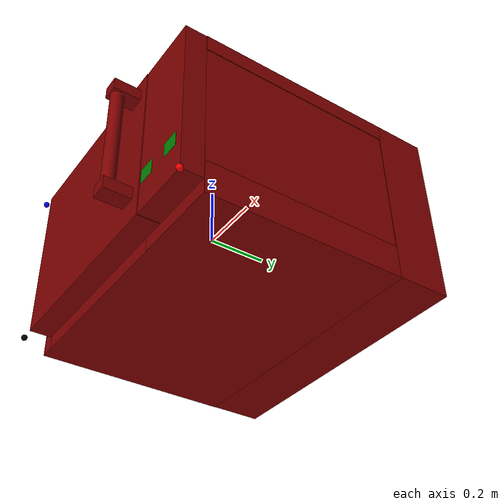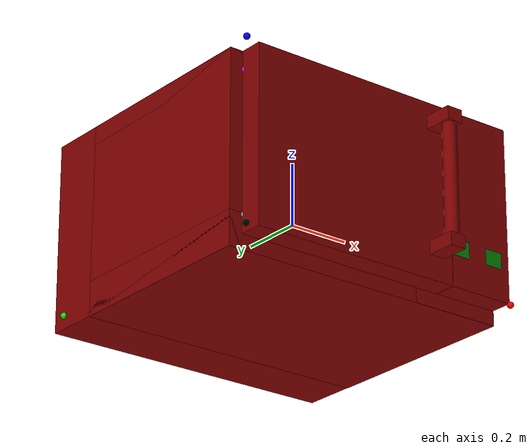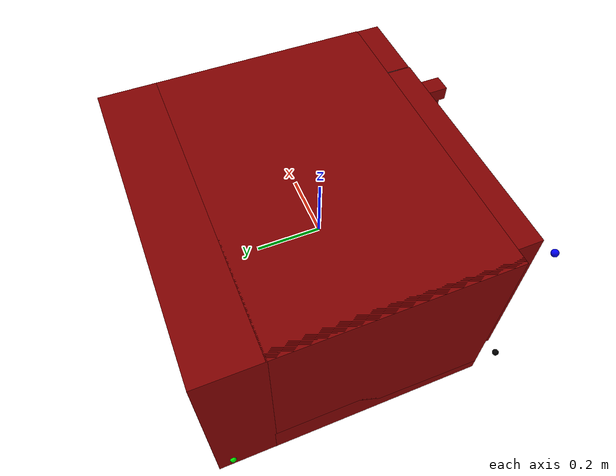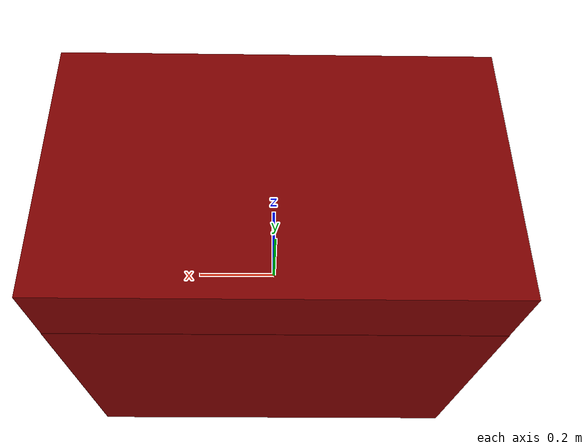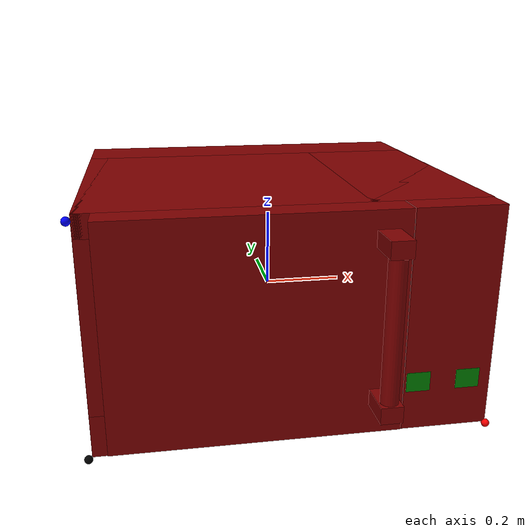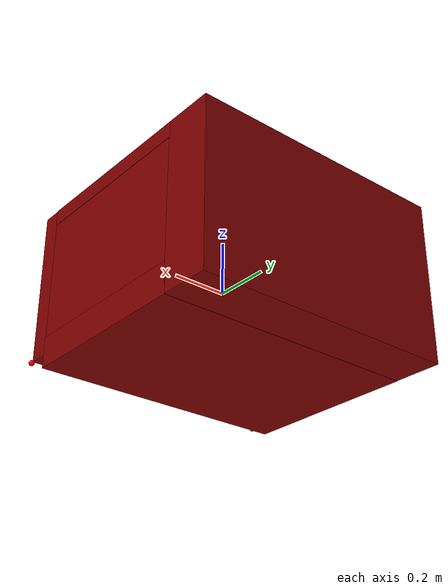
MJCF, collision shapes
<mujoco model="model">
  <compiler angle="radian"/>
  <asset>
    <texture file="visuals/image7.png" name="tex-model" type="2d" />
    <texture type="2d" name="image7" file="visuals/image7.png"/>
    <texture type="2d" name="image2" file="visuals/image2.png"/>
    <texture type="2d" name="image5" file="visuals/image5.png"/>
    <material name="model" reflectance="0.5" texrepeat="1 1" texture="tex-model" texuniform="false"/>
    <material name="TX_Microwave_3_1" texture="image7" specular="0.5" shininess="0.25"/>
    <material name="TX_Microwave_3_2" texture="image2" specular="0.5" shininess="0.25"/>
    <material name="TX_Microwave_3_3" texture="image5" specular="0.5" shininess="0.25"/>
    <mesh file="visuals/model_0.obj" name="model_0_vis" scale="1 1 1"/>
    <mesh file="visuals/model_1.obj" name="model_1_vis" scale="1 1 1"/>
    <mesh file="visuals/model_2.obj" name="model_2_vis" scale="1 1 1"/>
    <mesh file="visuals/door_0.obj" name="door_0_vis" scale="1 1 1"/>
    <mesh file="visuals/door_1.obj" name="door_1_vis" scale="1 1 1"/>
    <mesh file="visuals/door_2.obj" name="door_2_vis" scale="1 1 1"/>
  </asset>
  <default>
    <default class="visual">
      <geom conaffinity="0" contype="0" group="1" type="mesh"/>
    </default>
    <default class="collision">
      <geom group="0" rgba="0.5 0 0 0.5"/>
    </default>
  </default>
  <worldbody>
    <body>
      <body name="object">
        <geom solimp="0.998 0.998 0.001" solref="0.001 1" density="100" friction="0.95 0.3 0.1" type="mesh" mesh="model_0_vis" material="TX_Microwave_3_2" class="visual"/>
        <geom solimp="0.998 0.998 0.001" solref="0.001 1" density="100" friction="0.95 0.3 0.1" type="mesh" mesh="model_1_vis" material="TX_Microwave_3_3" class="visual"/>
        <geom solimp="0.998 0.998 0.001" solref="0.001 1" density="100" friction="0.95 0.3 0.1" type="mesh" mesh="model_2_vis" material="TX_Microwave_3_1" class="visual"/>
        <!-- Numpad inside fix -->
        <geom class="visual" type="box" rgba="0.4 0.4 0.4 1" pos="0.36 -0.369 0.029" size="0.095 0.033 0.25"/>
        <geom class="visual" type="box" rgba="0.4 0.4 0.4 1" pos="0.36 -0.362 0.29" size="0.095 0.03 0.011"/>
        <geom class="visual" type="box" rgba="0.4 0.4 0.4 1" pos="0.36 -0.363 -0.238" size="0.095 0.03 0.017"/>
        <!-- Back -->
        <geom class="collision" type="box" pos="0 0.42 0" size="0.485 0.09 0.302"/>
        <!-- Bottom -->
        <geom class="collision" type="box" pos="0 0 -0.248" size="0.485 0.334 0.055"/>
        <!-- Left -->
        <geom class="collision" type="box" pos="-0.46 0 0" size="0.025 0.334 0.302"/>
        <!-- Right -->
        <geom class="collision" type="box" pos="0.335 0 0" size="0.148 0.334 0.302"/>
        <!-- Top -->
        <geom class="collision" type="box" pos="0 0 0.273" size="0.485 0.334 0.029"/>
        <!-- Numpad -->
        <geom class="collision" type="box" pos="0.374 -0.369 0.023" size="0.109 0.037 0.279"/>
        <!-- start/stop buttons -->
        <geom class="collision" type="box" pos="0.425 -0.385 -0.13" size="0.03 0.0216 0.025" name="start_button" rgba="0.0 0.5 0 0.5"/>
        <geom class="collision" type="box" pos="0.30 -0.385 -0.13" size="0.03 0.0216 0.025" name="stop_button" rgba="0.0 0.5 0 0.5"/>
        <geom class="collision" type="cylinder" pos="-0.12 -0.02 -0.195" size="0.22 0.005" rgba="0 1 0 0.5" name="tray"/>
        <body name="door">
          <joint axis="0 0 1" limited="true" name="microjoint" range="-1.57 0" damping="2" frictionloss="2" armature=".01" pos="-0.485 -0.334 0" ref="0"/>
          <geom solimp="0.998 0.998 0.001" solref="0.001 1" density="100" friction="0.95 0.3 0.1" type="mesh" mesh="door_0_vis" material="TX_Microwave_3_2" class="visual"/>
          <geom solimp="0.998 0.998 0.001" solref="0.001 1" density="100" friction="0.95 0.3 0.1" type="mesh" mesh="door_1_vis" material="TX_Microwave_3_3" class="visual"/>
          <geom solimp="0.998 0.998 0.001" solref="0.001 1" density="100" friction="0.95 0.3 0.1" type="mesh" mesh="door_2_vis" material="TX_Microwave_3_1" class="visual"/>
          <!-- Door Main -->
          <geom class="collision" type="box" pos="-0.09 -0.371 0.023" size="0.3519 0.037 0.279"/>
          <!-- Handle Top -->
          <geom class="collision" type="box" pos="0.204 -0.453 0.236" size="0.027 0.047 0.021"/>
          <!-- Handle Bottom -->
          <geom class="collision" type="box" pos="0.204 -0.453 -0.159" size="0.027 0.047 0.021"/>
          <!-- Handle Main -->
          <geom class="collision" type="cylinder" pos="0.204 -0.474 0.039" size="0.022 0.18 0" name="door_handle"/>
          <!-- door sites -->
          <site rgba="1 0 0 0" size="0.005" pos="-0.075 -0.40 0.01" name="door_p1"/>
          <site rgba="0 1 0 0" size="0.005" pos="-0.025 -0.40 0.01" name="door_p2"/>
          <site rgba="0 0 1 0" size="0.005" pos="-0.075 -0.40 0.06" name="door_p3"/>
        </body>
        <!-- exterior bounding box points -->
        <site rgba="0 0 0 1" size="0.01" pos="-0.485 -0.408 -0.26" name="ext_p0"/>
        <site rgba="1 0 0 1" size="0.01" pos="0.485 -0.408 -0.26" name="ext_px"/>
        <site rgba="0 1 0 1" size="0.01" pos="-0.485 0.465 -0.26" name="ext_py"/>
        <site rgba="0 0 1 1" size="0.01" pos="-0.485 -0.408 0.305" name="ext_pz"/>
        <!-- interior bounding box points -->
        <site rgba="0.5 0.5 0.5 1" size="0.01" pos="-0.435 -0.334 -0.20" name="int_p0"/>
        <site rgba="0 1 1 1" size="0.01" pos="0.187 -0.334 -0.20" name="int_px"/>
        <site rgba="1 1 0 1" size="0.01" pos="-0.435 0.33 -0.20" name="int_py"/>
        <site rgba="1 0 1 1" size="0.01" pos="-0.435 -0.334 0.244" name="int_pz"/>
      </body>
    </body>
  </worldbody>
</mujoco>
